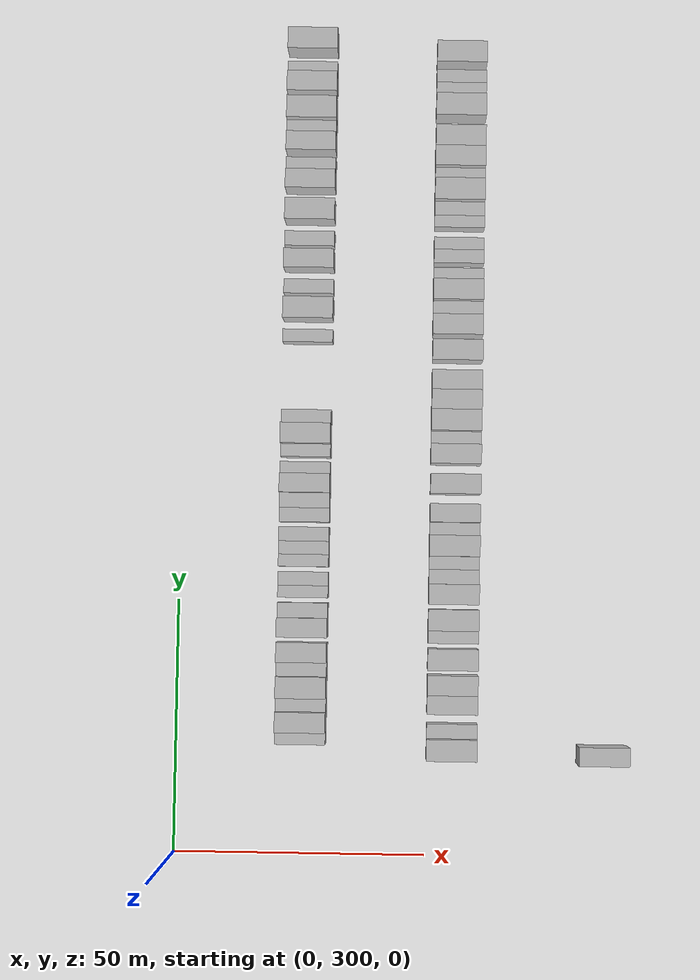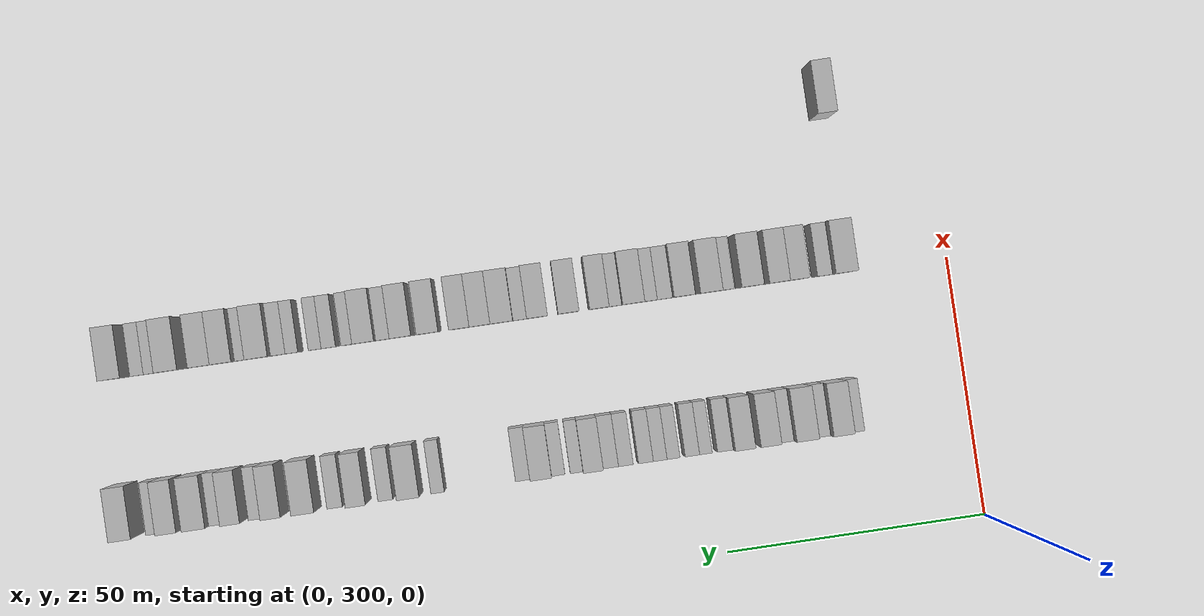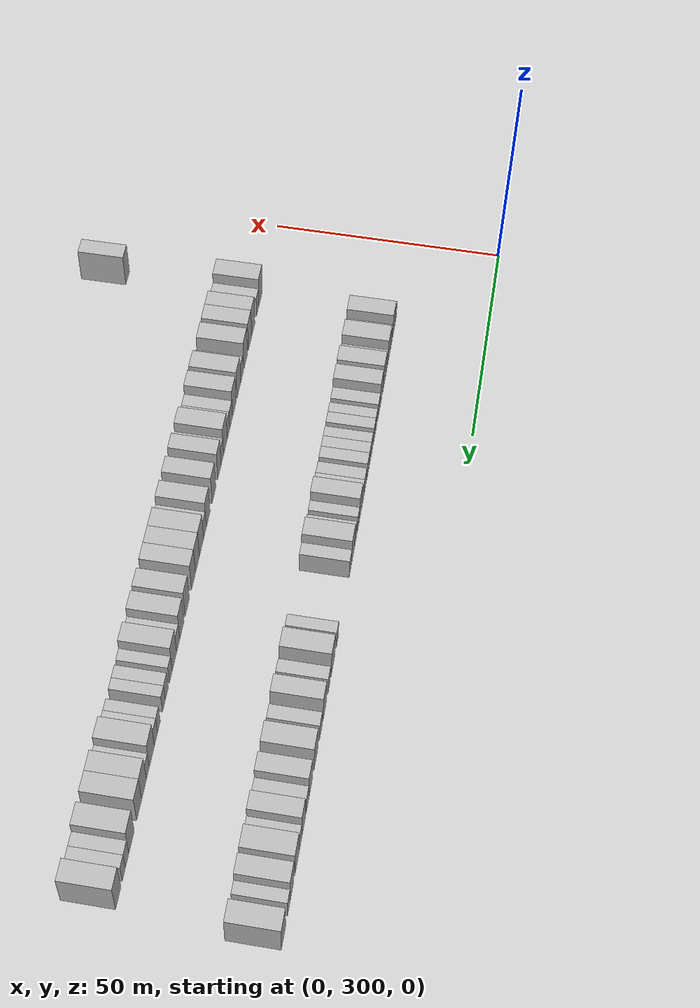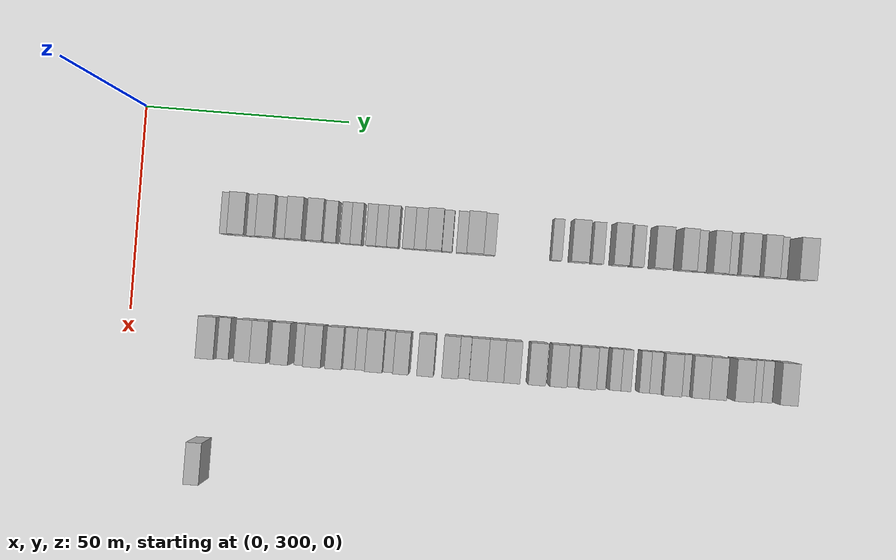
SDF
<sdf version="1.6">
 <world name="default">
  <model name="building_197">
   <static>1</static>
   <pose>25.0000 323.0839 0 0.000000 0.000000 0.000000</pose>
   <link name="link">
    <pose>0 0 3.00 0 0 0</pose>
    <collision name="collision"><geometry><box><size>10.0000 2.4819 6.0000</size></box></geometry></collision>
    <visual name="visual">
     <cast_shadows>0</cast_shadows>
     <geometry><box><size>10.0000 2.4819 6.0000</size></box></geometry>
     <material>
      <script>
       <uri>model://HANNAS_wall/materials/scripts</uri>
       <uri>model://HANNAS_wall/materials/textures</uri>
       <name>vrc/HANNAS_wall</name>
      </script>
     </material>
    </visual>
   </link>
  </model>
  <model name="building_198">
   <static>1</static>
   <pose>25.0000 326.3277 0 0.000000 0.000000 0.000000</pose>
   <link name="link">
    <pose>0 0 4.50 0 0 0</pose>
    <collision name="collision"><geometry><box><size>10.0000 4.0057 9.0000</size></box></geometry></collision>
    <visual name="visual">
     <cast_shadows>0</cast_shadows>
     <geometry><box><size>10.0000 4.0057 9.0000</size></box></geometry>
     <material>
      <script>
       <uri>model://HANNAS_wall/materials/scripts</uri>
       <uri>model://HANNAS_wall/materials/textures</uri>
       <name>vrc/HANNAS_wall</name>
      </script>
     </material>
    </visual>
   </link>
  </model>
  <model name="building_199">
   <static>1</static>
   <pose>25.0000 329.6715 0 0.000000 0.000000 0.000000</pose>
   <link name="link">
    <pose>0 0 3.00 0 0 0</pose>
    <collision name="collision"><geometry><box><size>10.0000 2.6817 6.0000</size></box></geometry></collision>
    <visual name="visual">
     <cast_shadows>0</cast_shadows>
     <geometry><box><size>10.0000 2.6817 6.0000</size></box></geometry>
     <material>
      <script>
       <uri>model://HANNAS_wall/materials/scripts</uri>
       <uri>model://HANNAS_wall/materials/textures</uri>
       <name>vrc/HANNAS_wall</name>
      </script>
     </material>
    </visual>
   </link>
  </model>
  <model name="building_200">
   <static>1</static>
   <pose>25.0000 333.1458 0 0.000000 0.000000 0.000000</pose>
   <link name="link">
    <pose>0 0 4.50 0 0 0</pose>
    <collision name="collision"><geometry><box><size>10.0000 4.2670 9.0000</size></box></geometry></collision>
    <visual name="visual">
     <cast_shadows>0</cast_shadows>
     <geometry><box><size>10.0000 4.2670 9.0000</size></box></geometry>
     <material>
      <script>
       <uri>model://HANNAS_wall/materials/scripts</uri>
       <uri>model://HANNAS_wall/materials/textures</uri>
       <name>vrc/HANNAS_wall</name>
      </script>
     </material>
    </visual>
   </link>
  </model>
  <model name="building_201">
   <static>1</static>
   <pose>25.0000 336.6871 0 0.000000 0.000000 0.000000</pose>
   <link name="link">
    <pose>0 0 3.00 0 0 0</pose>
    <collision name="collision"><geometry><box><size>10.0000 2.8156 6.0000</size></box></geometry></collision>
    <visual name="visual">
     <cast_shadows>0</cast_shadows>
     <geometry><box><size>10.0000 2.8156 6.0000</size></box></geometry>
     <material>
      <script>
       <uri>model://HANNAS_wall/materials/scripts</uri>
       <uri>model://HANNAS_wall/materials/textures</uri>
       <name>vrc/HANNAS_wall</name>
      </script>
     </material>
    </visual>
   </link>
  </model>
  <model name="building_202">
   <static>1</static>
   <pose>25.0000 340.0478 0 0.000000 0.000000 0.000000</pose>
   <link name="link">
    <pose>0 0 4.50 0 0 0</pose>
    <collision name="collision"><geometry><box><size>10.0000 3.9058 9.0000</size></box></geometry></collision>
    <visual name="visual">
     <cast_shadows>0</cast_shadows>
     <geometry><box><size>10.0000 3.9058 9.0000</size></box></geometry>
     <material>
      <script>
       <uri>model://HANNAS_wall/materials/scripts</uri>
       <uri>model://HANNAS_wall/materials/textures</uri>
       <name>vrc/HANNAS_wall</name>
      </script>
     </material>
    </visual>
   </link>
  </model>
  <model name="building_203">
   <static>1</static>
   <pose>25.0000 344.9200 0 0.000000 0.000000 0.000000</pose>
   <link name="link">
    <pose>0 0 4.50 0 0 0</pose>
    <collision name="collision"><geometry><box><size>10.0000 3.8385 9.0000</size></box></geometry></collision>
    <visual name="visual">
     <cast_shadows>0</cast_shadows>
     <geometry><box><size>10.0000 3.8385 9.0000</size></box></geometry>
     <material>
      <script>
       <uri>model://HANNAS_wall/materials/scripts</uri>
       <uri>model://HANNAS_wall/materials/textures</uri>
       <name>vrc/HANNAS_wall</name>
      </script>
     </material>
    </visual>
   </link>
  </model>
  <model name="building_204">
   <static>1</static>
   <pose>25.0000 348.3381 0 0.000000 0.000000 0.000000</pose>
   <link name="link">
    <pose>0 0 3.00 0 0 0</pose>
    <collision name="collision"><geometry><box><size>10.0000 2.9975 6.0000</size></box></geometry></collision>
    <visual name="visual">
     <cast_shadows>0</cast_shadows>
     <geometry><box><size>10.0000 2.9975 6.0000</size></box></geometry>
     <material>
      <script>
       <uri>model://HANNAS_wall/materials/scripts</uri>
       <uri>model://HANNAS_wall/materials/textures</uri>
       <name>vrc/HANNAS_wall</name>
      </script>
     </material>
    </visual>
   </link>
  </model>
  <model name="building_205">
   <static>1</static>
   <pose>25.0000 352.0427 0 0.000000 0.000000 0.000000</pose>
   <link name="link">
    <pose>0 0 3.00 0 0 0</pose>
    <collision name="collision"><geometry><box><size>10.0000 2.4117 6.0000</size></box></geometry></collision>
    <visual name="visual">
     <cast_shadows>0</cast_shadows>
     <geometry><box><size>10.0000 2.4117 6.0000</size></box></geometry>
     <material>
      <script>
       <uri>model://HANNAS_wall/materials/scripts</uri>
       <uri>model://HANNAS_wall/materials/textures</uri>
       <name>vrc/HANNAS_wall</name>
      </script>
     </material>
    </visual>
   </link>
  </model>
  <model name="building_206">
   <static>1</static>
   <pose>25.0000 354.6160 0 0.000000 0.000000 0.000000</pose>
   <link name="link">
    <pose>0 0 3.00 0 0 0</pose>
    <collision name="collision"><geometry><box><size>10.0000 2.7350 6.0000</size></box></geometry></collision>
    <visual name="visual">
     <cast_shadows>0</cast_shadows>
     <geometry><box><size>10.0000 2.7350 6.0000</size></box></geometry>
     <material>
      <script>
       <uri>model://HANNAS_wall/materials/scripts</uri>
       <uri>model://HANNAS_wall/materials/textures</uri>
       <name>vrc/HANNAS_wall</name>
      </script>
     </material>
    </visual>
   </link>
  </model>
  <model name="building_207">
   <static>1</static>
   <pose>25.0000 358.2082 0 0.000000 0.000000 0.000000</pose>
   <link name="link">
    <pose>0 0 3.00 0 0 0</pose>
    <collision name="collision"><geometry><box><size>10.0000 2.4495 6.0000</size></box></geometry></collision>
    <visual name="visual">
     <cast_shadows>0</cast_shadows>
     <geometry><box><size>10.0000 2.4495 6.0000</size></box></geometry>
     <material>
      <script>
       <uri>model://HANNAS_wall/materials/scripts</uri>
       <uri>model://HANNAS_wall/materials/textures</uri>
       <name>vrc/HANNAS_wall</name>
      </script>
     </material>
    </visual>
   </link>
  </model>
  <model name="building_208">
   <static>1</static>
   <pose>25.0000 360.7401 0 0.000000 0.000000 0.000000</pose>
   <link name="link">
    <pose>0 0 3.00 0 0 0</pose>
    <collision name="collision"><geometry><box><size>10.0000 2.6143 6.0000</size></box></geometry></collision>
    <visual name="visual">
     <cast_shadows>0</cast_shadows>
     <geometry><box><size>10.0000 2.6143 6.0000</size></box></geometry>
     <material>
      <script>
       <uri>model://HANNAS_wall/materials/scripts</uri>
       <uri>model://HANNAS_wall/materials/textures</uri>
       <name>vrc/HANNAS_wall</name>
      </script>
     </material>
    </visual>
   </link>
  </model>
  <model name="building_209">
   <static>1</static>
   <pose>25.0000 363.4550 0 0.000000 0.000000 0.000000</pose>
   <link name="link">
    <pose>0 0 3.00 0 0 0</pose>
    <collision name="collision"><geometry><box><size>10.0000 2.8155 6.0000</size></box></geometry></collision>
    <visual name="visual">
     <cast_shadows>0</cast_shadows>
     <geometry><box><size>10.0000 2.8155 6.0000</size></box></geometry>
     <material>
      <script>
       <uri>model://HANNAS_wall/materials/scripts</uri>
       <uri>model://HANNAS_wall/materials/textures</uri>
       <name>vrc/HANNAS_wall</name>
      </script>
     </material>
    </visual>
   </link>
  </model>
  <model name="building_210">
   <static>1</static>
   <pose>25.0000 367.2683 0 0.000000 0.000000 0.000000</pose>
   <link name="link">
    <pose>0 0 3.00 0 0 0</pose>
    <collision name="collision"><geometry><box><size>10.0000 2.8111 6.0000</size></box></geometry></collision>
    <visual name="visual">
     <cast_shadows>0</cast_shadows>
     <geometry><box><size>10.0000 2.8111 6.0000</size></box></geometry>
     <material>
      <script>
       <uri>model://HANNAS_wall/materials/scripts</uri>
       <uri>model://HANNAS_wall/materials/textures</uri>
       <name>vrc/HANNAS_wall</name>
      </script>
     </material>
    </visual>
   </link>
  </model>
  <model name="building_211">
   <static>1</static>
   <pose>25.0000 370.1663 0 0.000000 0.000000 0.000000</pose>
   <link name="link">
    <pose>0 0 3.00 0 0 0</pose>
    <collision name="collision"><geometry><box><size>10.0000 2.9849 6.0000</size></box></geometry></collision>
    <visual name="visual">
     <cast_shadows>0</cast_shadows>
     <geometry><box><size>10.0000 2.9849 6.0000</size></box></geometry>
     <material>
      <script>
       <uri>model://HANNAS_wall/materials/scripts</uri>
       <uri>model://HANNAS_wall/materials/textures</uri>
       <name>vrc/HANNAS_wall</name>
      </script>
     </material>
    </visual>
   </link>
  </model>
  <model name="building_212">
   <static>1</static>
   <pose>25.0000 373.5412 0 0.000000 0.000000 0.000000</pose>
   <link name="link">
    <pose>0 0 4.50 0 0 0</pose>
    <collision name="collision"><geometry><box><size>10.0000 3.7650 9.0000</size></box></geometry></collision>
    <visual name="visual">
     <cast_shadows>0</cast_shadows>
     <geometry><box><size>10.0000 3.7650 9.0000</size></box></geometry>
     <material>
      <script>
       <uri>model://HANNAS_wall/materials/scripts</uri>
       <uri>model://HANNAS_wall/materials/textures</uri>
       <name>vrc/HANNAS_wall</name>
      </script>
     </material>
    </visual>
   </link>
  </model>
  <model name="building_213">
   <static>1</static>
   <pose>25.0000 376.6318 0 0.000000 0.000000 0.000000</pose>
   <link name="link">
    <pose>0 0 3.00 0 0 0</pose>
    <collision name="collision"><geometry><box><size>10.0000 2.4162 6.0000</size></box></geometry></collision>
    <visual name="visual">
     <cast_shadows>0</cast_shadows>
     <geometry><box><size>10.0000 2.4162 6.0000</size></box></geometry>
     <material>
      <script>
       <uri>model://HANNAS_wall/materials/scripts</uri>
       <uri>model://HANNAS_wall/materials/textures</uri>
       <name>vrc/HANNAS_wall</name>
      </script>
     </material>
    </visual>
   </link>
  </model>
  <model name="building_214">
   <static>1</static>
   <pose>25.0000 380.1181 0 0.000000 0.000000 0.000000</pose>
   <link name="link">
    <pose>0 0 3.00 0 0 0</pose>
    <collision name="collision"><geometry><box><size>10.0000 2.5563 6.0000</size></box></geometry></collision>
    <visual name="visual">
     <cast_shadows>0</cast_shadows>
     <geometry><box><size>10.0000 2.5563 6.0000</size></box></geometry>
     <material>
      <script>
       <uri>model://HANNAS_wall/materials/scripts</uri>
       <uri>model://HANNAS_wall/materials/textures</uri>
       <name>vrc/HANNAS_wall</name>
      </script>
     </material>
    </visual>
   </link>
  </model>
  <model name="building_215">
   <static>1</static>
   <pose>25.0000 383.4278 0 0.000000 0.000000 0.000000</pose>
   <link name="link">
    <pose>0 0 4.50 0 0 0</pose>
    <collision name="collision"><geometry><box><size>10.0000 4.0631 9.0000</size></box></geometry></collision>
    <visual name="visual">
     <cast_shadows>0</cast_shadows>
     <geometry><box><size>10.0000 4.0631 9.0000</size></box></geometry>
     <material>
      <script>
       <uri>model://HANNAS_wall/materials/scripts</uri>
       <uri>model://HANNAS_wall/materials/textures</uri>
       <name>vrc/HANNAS_wall</name>
      </script>
     </material>
    </visual>
   </link>
  </model>
  <model name="building_216">
   <static>1</static>
   <pose>25.0000 386.8630 0 0.000000 0.000000 0.000000</pose>
   <link name="link">
    <pose>0 0 3.00 0 0 0</pose>
    <collision name="collision"><geometry><box><size>10.0000 2.8074 6.0000</size></box></geometry></collision>
    <visual name="visual">
     <cast_shadows>0</cast_shadows>
     <geometry><box><size>10.0000 2.8074 6.0000</size></box></geometry>
     <material>
      <script>
       <uri>model://HANNAS_wall/materials/scripts</uri>
       <uri>model://HANNAS_wall/materials/textures</uri>
       <name>vrc/HANNAS_wall</name>
      </script>
     </material>
    </visual>
   </link>
  </model>
  <model name="building_217">
   <static>1</static>
   <pose>25.0000 403.0632 0 0.000000 0.000000 0.000000</pose>
   <link name="link">
    <pose>0 0 3.00 0 0 0</pose>
    <collision name="collision"><geometry><box><size>10.0000 2.5310 6.0000</size></box></geometry></collision>
    <visual name="visual">
     <cast_shadows>0</cast_shadows>
     <geometry><box><size>10.0000 2.5310 6.0000</size></box></geometry>
     <material>
      <script>
       <uri>model://HANNAS_wall/materials/scripts</uri>
       <uri>model://HANNAS_wall/materials/textures</uri>
       <name>vrc/HANNAS_wall</name>
      </script>
     </material>
    </visual>
   </link>
  </model>
  <model name="building_218">
   <static>1</static>
   <pose>25.0000 408.4440 0 0.000000 0.000000 0.000000</pose>
   <link name="link">
    <pose>0 0 4.50 0 0 0</pose>
    <collision name="collision"><geometry><box><size>10.0000 4.2307 9.0000</size></box></geometry></collision>
    <visual name="visual">
     <cast_shadows>0</cast_shadows>
     <geometry><box><size>10.0000 4.2307 9.0000</size></box></geometry>
     <material>
      <script>
       <uri>model://HANNAS_wall/materials/scripts</uri>
       <uri>model://HANNAS_wall/materials/textures</uri>
       <name>vrc/HANNAS_wall</name>
      </script>
     </material>
    </visual>
   </link>
  </model>
  <model name="building_219">
   <static>1</static>
   <pose>25.0000 412.9791 0 0.000000 0.000000 0.000000</pose>
   <link name="link">
    <pose>0 0 3.00 0 0 0</pose>
    <collision name="collision"><geometry><box><size>10.0000 2.8394 6.0000</size></box></geometry></collision>
    <visual name="visual">
     <cast_shadows>0</cast_shadows>
     <geometry><box><size>10.0000 2.8394 6.0000</size></box></geometry>
     <material>
      <script>
       <uri>model://HANNAS_wall/materials/scripts</uri>
       <uri>model://HANNAS_wall/materials/textures</uri>
       <name>vrc/HANNAS_wall</name>
      </script>
     </material>
    </visual>
   </link>
  </model>
  <model name="building_220">
   <static>1</static>
   <pose>25.0000 418.2766 0 0.000000 0.000000 0.000000</pose>
   <link name="link">
    <pose>0 0 4.50 0 0 0</pose>
    <collision name="collision"><geometry><box><size>10.0000 3.7556 9.0000</size></box></geometry></collision>
    <visual name="visual">
     <cast_shadows>0</cast_shadows>
     <geometry><box><size>10.0000 3.7556 9.0000</size></box></geometry>
     <material>
      <script>
       <uri>model://HANNAS_wall/materials/scripts</uri>
       <uri>model://HANNAS_wall/materials/textures</uri>
       <name>vrc/HANNAS_wall</name>
      </script>
     </material>
    </visual>
   </link>
  </model>
  <model name="building_221">
   <static>1</static>
   <pose>25.0000 422.6198 0 0.000000 0.000000 0.000000</pose>
   <link name="link">
    <pose>0 0 3.00 0 0 0</pose>
    <collision name="collision"><geometry><box><size>10.0000 2.9308 6.0000</size></box></geometry></collision>
    <visual name="visual">
     <cast_shadows>0</cast_shadows>
     <geometry><box><size>10.0000 2.9308 6.0000</size></box></geometry>
     <material>
      <script>
       <uri>model://HANNAS_wall/materials/scripts</uri>
       <uri>model://HANNAS_wall/materials/textures</uri>
       <name>vrc/HANNAS_wall</name>
      </script>
     </material>
    </visual>
   </link>
  </model>
  <model name="building_222">
   <static>1</static>
   <pose>25.0000 428.2286 0 0.000000 0.000000 0.000000</pose>
   <link name="link">
    <pose>0 0 4.50 0 0 0</pose>
    <collision name="collision"><geometry><box><size>10.0000 4.2868 9.0000</size></box></geometry></collision>
    <visual name="visual">
     <cast_shadows>0</cast_shadows>
     <geometry><box><size>10.0000 4.2868 9.0000</size></box></geometry>
     <material>
      <script>
       <uri>model://HANNAS_wall/materials/scripts</uri>
       <uri>model://HANNAS_wall/materials/textures</uri>
       <name>vrc/HANNAS_wall</name>
      </script>
     </material>
    </visual>
   </link>
  </model>
  <model name="building_223">
   <static>1</static>
   <pose>25.0000 434.2690 0 0.000000 0.000000 0.000000</pose>
   <link name="link">
    <pose>0 0 4.50 0 0 0</pose>
    <collision name="collision"><geometry><box><size>10.0000 3.7939 9.0000</size></box></geometry></collision>
    <visual name="visual">
     <cast_shadows>0</cast_shadows>
     <geometry><box><size>10.0000 3.7939 9.0000</size></box></geometry>
     <material>
      <script>
       <uri>model://HANNAS_wall/materials/scripts</uri>
       <uri>model://HANNAS_wall/materials/textures</uri>
       <name>vrc/HANNAS_wall</name>
      </script>
     </material>
    </visual>
   </link>
  </model>
  <model name="building_224">
   <static>1</static>
   <pose>25.0000 437.5883 0 0.000000 0.000000 0.000000</pose>
   <link name="link">
    <pose>0 0 3.00 0 0 0</pose>
    <collision name="collision"><geometry><box><size>10.0000 2.8447 6.0000</size></box></geometry></collision>
    <visual name="visual">
     <cast_shadows>0</cast_shadows>
     <geometry><box><size>10.0000 2.8447 6.0000</size></box></geometry>
     <material>
      <script>
       <uri>model://HANNAS_wall/materials/scripts</uri>
       <uri>model://HANNAS_wall/materials/textures</uri>
       <name>vrc/HANNAS_wall</name>
      </script>
     </material>
    </visual>
   </link>
  </model>
  <model name="building_225">
   <static>1</static>
   <pose>25.0000 441.8723 0 0.000000 0.000000 0.000000</pose>
   <link name="link">
    <pose>0 0 4.50 0 0 0</pose>
    <collision name="collision"><geometry><box><size>10.0000 3.7235 9.0000</size></box></geometry></collision>
    <visual name="visual">
     <cast_shadows>0</cast_shadows>
     <geometry><box><size>10.0000 3.7235 9.0000</size></box></geometry>
     <material>
      <script>
       <uri>model://HANNAS_wall/materials/scripts</uri>
       <uri>model://HANNAS_wall/materials/textures</uri>
       <name>vrc/HANNAS_wall</name>
      </script>
     </material>
    </visual>
   </link>
  </model>
  <model name="building_226">
   <static>1</static>
   <pose>25.0000 445.1358 0 0.000000 0.000000 0.000000</pose>
   <link name="link">
    <pose>0 0 3.00 0 0 0</pose>
    <collision name="collision"><geometry><box><size>10.0000 2.8035 6.0000</size></box></geometry></collision>
    <visual name="visual">
     <cast_shadows>0</cast_shadows>
     <geometry><box><size>10.0000 2.8035 6.0000</size></box></geometry>
     <material>
      <script>
       <uri>model://HANNAS_wall/materials/scripts</uri>
       <uri>model://HANNAS_wall/materials/textures</uri>
       <name>vrc/HANNAS_wall</name>
      </script>
     </material>
    </visual>
   </link>
  </model>
  <model name="building_227">
   <static>1</static>
   <pose>25.0000 448.7479 0 0.000000 0.000000 0.000000</pose>
   <link name="link">
    <pose>0 0 4.50 0 0 0</pose>
    <collision name="collision"><geometry><box><size>10.0000 4.4206 9.0000</size></box></geometry></collision>
    <visual name="visual">
     <cast_shadows>0</cast_shadows>
     <geometry><box><size>10.0000 4.4206 9.0000</size></box></geometry>
     <material>
      <script>
       <uri>model://HANNAS_wall/materials/scripts</uri>
       <uri>model://HANNAS_wall/materials/textures</uri>
       <name>vrc/HANNAS_wall</name>
      </script>
     </material>
    </visual>
   </link>
  </model>
  <model name="building_228">
   <static>1</static>
   <pose>25.0000 453.9394 0 0.000000 0.000000 0.000000</pose>
   <link name="link">
    <pose>0 0 4.50 0 0 0</pose>
    <collision name="collision"><geometry><box><size>10.0000 3.9623 9.0000</size></box></geometry></collision>
    <visual name="visual">
     <cast_shadows>0</cast_shadows>
     <geometry><box><size>10.0000 3.9623 9.0000</size></box></geometry>
     <material>
      <script>
       <uri>model://HANNAS_wall/materials/scripts</uri>
       <uri>model://HANNAS_wall/materials/textures</uri>
       <name>vrc/HANNAS_wall</name>
      </script>
     </material>
    </visual>
   </link>
  </model>
  <model name="building_229">
   <static>1</static>
   <pose>25.0000 457.2005 0 0.000000 0.000000 0.000000</pose>
   <link name="link">
    <pose>0 0 3.00 0 0 0</pose>
    <collision name="collision"><geometry><box><size>10.0000 2.5598 6.0000</size></box></geometry></collision>
    <visual name="visual">
     <cast_shadows>0</cast_shadows>
     <geometry><box><size>10.0000 2.5598 6.0000</size></box></geometry>
     <material>
      <script>
       <uri>model://HANNAS_wall/materials/scripts</uri>
       <uri>model://HANNAS_wall/materials/textures</uri>
       <name>vrc/HANNAS_wall</name>
      </script>
     </material>
    </visual>
   </link>
  </model>
  <model name="building_230">
   <static>1</static>
   <pose>25.0000 462.6021 0 0.000000 0.000000 0.000000</pose>
   <link name="link">
    <pose>0 0 4.50 0 0 0</pose>
    <collision name="collision"><geometry><box><size>10.0000 4.2435 9.0000</size></box></geometry></collision>
    <visual name="visual">
     <cast_shadows>0</cast_shadows>
     <geometry><box><size>10.0000 4.2435 9.0000</size></box></geometry>
     <material>
      <script>
       <uri>model://HANNAS_wall/materials/scripts</uri>
       <uri>model://HANNAS_wall/materials/textures</uri>
       <name>vrc/HANNAS_wall</name>
      </script>
     </material>
    </visual>
   </link>
  </model>
  <model name="building_423">
   <static>1</static>
   <pose>55.0000 321.3728 0 0.000000 0.000000 0.000000</pose>
   <link name="link">
    <pose>0 0 4.50 0 0 0</pose>
    <collision name="collision"><geometry><box><size>10.0000 4.2852 9.0000</size></box></geometry></collision>
    <visual name="visual">
     <cast_shadows>0</cast_shadows>
     <geometry><box><size>10.0000 4.2852 9.0000</size></box></geometry>
     <material>
      <script>
       <uri>model://HANNAS_wall/materials/scripts</uri>
       <uri>model://HANNAS_wall/materials/textures</uri>
       <name>vrc/HANNAS_wall</name>
      </script>
     </material>
    </visual>
   </link>
  </model>
  <model name="building_424">
   <static>1</static>
   <pose>55.0000 324.9489 0 0.000000 0.000000 0.000000</pose>
   <link name="link">
    <pose>0 0 3.00 0 0 0</pose>
    <collision name="collision"><geometry><box><size>10.0000 2.8668 6.0000</size></box></geometry></collision>
    <visual name="visual">
     <cast_shadows>0</cast_shadows>
     <geometry><box><size>10.0000 2.8668 6.0000</size></box></geometry>
     <material>
      <script>
       <uri>model://HANNAS_wall/materials/scripts</uri>
       <uri>model://HANNAS_wall/materials/textures</uri>
       <name>vrc/HANNAS_wall</name>
      </script>
     </material>
    </visual>
   </link>
  </model>
  <model name="building_425">
   <static>1</static>
   <pose>55.0000 330.2243 0 0.000000 0.000000 0.000000</pose>
   <link name="link">
    <pose>0 0 4.50 0 0 0</pose>
    <collision name="collision"><geometry><box><size>10.0000 3.6841 9.0000</size></box></geometry></collision>
    <visual name="visual">
     <cast_shadows>0</cast_shadows>
     <geometry><box><size>10.0000 3.6841 9.0000</size></box></geometry>
     <material>
      <script>
       <uri>model://HANNAS_wall/materials/scripts</uri>
       <uri>model://HANNAS_wall/materials/textures</uri>
       <name>vrc/HANNAS_wall</name>
      </script>
     </material>
    </visual>
   </link>
  </model>
  <model name="building_426">
   <static>1</static>
   <pose>55.0000 334.0288 0 0.000000 0.000000 0.000000</pose>
   <link name="link">
    <pose>0 0 4.50 0 0 0</pose>
    <collision name="collision"><geometry><box><size>10.0000 3.9249 9.0000</size></box></geometry></collision>
    <visual name="visual">
     <cast_shadows>0</cast_shadows>
     <geometry><box><size>10.0000 3.9249 9.0000</size></box></geometry>
     <material>
      <script>
       <uri>model://HANNAS_wall/materials/scripts</uri>
       <uri>model://HANNAS_wall/materials/textures</uri>
       <name>vrc/HANNAS_wall</name>
      </script>
     </material>
    </visual>
   </link>
  </model>
  <model name="building_427">
   <static>1</static>
   <pose>55.0000 339.1026 0 0.000000 0.000000 0.000000</pose>
   <link name="link">
    <pose>0 0 4.50 0 0 0</pose>
    <collision name="collision"><geometry><box><size>10.0000 4.2227 9.0000</size></box></geometry></collision>
    <visual name="visual">
     <cast_shadows>0</cast_shadows>
     <geometry><box><size>10.0000 4.2227 9.0000</size></box></geometry>
     <material>
      <script>
       <uri>model://HANNAS_wall/materials/scripts</uri>
       <uri>model://HANNAS_wall/materials/textures</uri>
       <name>vrc/HANNAS_wall</name>
      </script>
     </material>
    </visual>
   </link>
  </model>
  <model name="building_428">
   <static>1</static>
   <pose>55.0000 343.4811 0 0.000000 0.000000 0.000000</pose>
   <link name="link">
    <pose>0 0 3.00 0 0 0</pose>
    <collision name="collision"><geometry><box><size>10.0000 2.5343 6.0000</size></box></geometry></collision>
    <visual name="visual">
     <cast_shadows>0</cast_shadows>
     <geometry><box><size>10.0000 2.5343 6.0000</size></box></geometry>
     <material>
      <script>
       <uri>model://HANNAS_wall/materials/scripts</uri>
       <uri>model://HANNAS_wall/materials/textures</uri>
       <name>vrc/HANNAS_wall</name>
      </script>
     </material>
    </visual>
   </link>
  </model>
  <model name="building_429">
   <static>1</static>
   <pose>55.0000 346.8650 0 0.000000 0.000000 0.000000</pose>
   <link name="link">
    <pose>0 0 4.50 0 0 0</pose>
    <collision name="collision"><geometry><box><size>10.0000 4.2335 9.0000</size></box></geometry></collision>
    <visual name="visual">
     <cast_shadows>0</cast_shadows>
     <geometry><box><size>10.0000 4.2335 9.0000</size></box></geometry>
     <material>
      <script>
       <uri>model://HANNAS_wall/materials/scripts</uri>
       <uri>model://HANNAS_wall/materials/textures</uri>
       <name>vrc/HANNAS_wall</name>
      </script>
     </material>
    </visual>
   </link>
  </model>
  <model name="building_430">
   <static>1</static>
   <pose>55.0000 351.9788 0 0.000000 0.000000 0.000000</pose>
   <link name="link">
    <pose>0 0 4.50 0 0 0</pose>
    <collision name="collision"><geometry><box><size>10.0000 3.9942 9.0000</size></box></geometry></collision>
    <visual name="visual">
     <cast_shadows>0</cast_shadows>
     <geometry><box><size>10.0000 3.9942 9.0000</size></box></geometry>
     <material>
      <script>
       <uri>model://HANNAS_wall/materials/scripts</uri>
       <uri>model://HANNAS_wall/materials/textures</uri>
       <name>vrc/HANNAS_wall</name>
      </script>
     </material>
    </visual>
   </link>
  </model>
  <model name="building_431">
   <static>1</static>
   <pose>55.0000 355.4327 0 0.000000 0.000000 0.000000</pose>
   <link name="link">
    <pose>0 0 3.00 0 0 0</pose>
    <collision name="collision"><geometry><box><size>10.0000 2.9136 6.0000</size></box></geometry></collision>
    <visual name="visual">
     <cast_shadows>0</cast_shadows>
     <geometry><box><size>10.0000 2.9136 6.0000</size></box></geometry>
     <material>
      <script>
       <uri>model://HANNAS_wall/materials/scripts</uri>
       <uri>model://HANNAS_wall/materials/textures</uri>
       <name>vrc/HANNAS_wall</name>
      </script>
     </material>
    </visual>
   </link>
  </model>
  <model name="building_432">
   <static>1</static>
   <pose>55.0000 358.1900 0 0.000000 0.000000 0.000000</pose>
   <link name="link">
    <pose>0 0 3.00 0 0 0</pose>
    <collision name="collision"><geometry><box><size>10.0000 2.6009 6.0000</size></box></geometry></collision>
    <visual name="visual">
     <cast_shadows>0</cast_shadows>
     <geometry><box><size>10.0000 2.6009 6.0000</size></box></geometry>
     <material>
      <script>
       <uri>model://HANNAS_wall/materials/scripts</uri>
       <uri>model://HANNAS_wall/materials/textures</uri>
       <name>vrc/HANNAS_wall</name>
      </script>
     </material>
    </visual>
   </link>
  </model>
  <model name="building_433">
   <static>1</static>
   <pose>55.0000 361.5749 0 0.000000 0.000000 0.000000</pose>
   <link name="link">
    <pose>0 0 4.50 0 0 0</pose>
    <collision name="collision"><geometry><box><size>10.0000 4.1689 9.0000</size></box></geometry></collision>
    <visual name="visual">
     <cast_shadows>0</cast_shadows>
     <geometry><box><size>10.0000 4.1689 9.0000</size></box></geometry>
     <material>
      <script>
       <uri>model://HANNAS_wall/materials/scripts</uri>
       <uri>model://HANNAS_wall/materials/textures</uri>
       <name>vrc/HANNAS_wall</name>
      </script>
     </material>
    </visual>
   </link>
  </model>
  <model name="building_434">
   <static>1</static>
   <pose>55.0000 364.9301 0 0.000000 0.000000 0.000000</pose>
   <link name="link">
    <pose>0 0 3.00 0 0 0</pose>
    <collision name="collision"><geometry><box><size>10.0000 2.5415 6.0000</size></box></geometry></collision>
    <visual name="visual">
     <cast_shadows>0</cast_shadows>
     <geometry><box><size>10.0000 2.5415 6.0000</size></box></geometry>
     <material>
      <script>
       <uri>model://HANNAS_wall/materials/scripts</uri>
       <uri>model://HANNAS_wall/materials/textures</uri>
       <name>vrc/HANNAS_wall</name>
      </script>
     </material>
    </visual>
   </link>
  </model>
  <model name="building_435">
   <static>1</static>
   <pose>55.0000 368.0329 0 0.000000 0.000000 0.000000</pose>
   <link name="link">
    <pose>0 0 4.50 0 0 0</pose>
    <collision name="collision"><geometry><box><size>10.0000 3.6640 9.0000</size></box></geometry></collision>
    <visual name="visual">
     <cast_shadows>0</cast_shadows>
     <geometry><box><size>10.0000 3.6640 9.0000</size></box></geometry>
     <material>
      <script>
       <uri>model://HANNAS_wall/materials/scripts</uri>
       <uri>model://HANNAS_wall/materials/textures</uri>
       <name>vrc/HANNAS_wall</name>
      </script>
     </material>
    </visual>
   </link>
  </model>
  <model name="building_436">
   <static>1</static>
   <pose>55.0000 373.8420 0 0.000000 0.000000 0.000000</pose>
   <link name="link">
    <pose>0 0 4.50 0 0 0</pose>
    <collision name="collision"><geometry><box><size>10.0000 3.9543 9.0000</size></box></geometry></collision>
    <visual name="visual">
     <cast_shadows>0</cast_shadows>
     <geometry><box><size>10.0000 3.9543 9.0000</size></box></geometry>
     <material>
      <script>
       <uri>model://HANNAS_wall/materials/scripts</uri>
       <uri>model://HANNAS_wall/materials/textures</uri>
       <name>vrc/HANNAS_wall</name>
      </script>
     </material>
    </visual>
   </link>
  </model>
  <model name="building_437">
   <static>1</static>
   <pose>55.0000 379.7818 0 0.000000 0.000000 0.000000</pose>
   <link name="link">
    <pose>0 0 4.50 0 0 0</pose>
    <collision name="collision"><geometry><box><size>10.0000 3.9253 9.0000</size></box></geometry></collision>
    <visual name="visual">
     <cast_shadows>0</cast_shadows>
     <geometry><box><size>10.0000 3.9253 9.0000</size></box></geometry>
     <material>
      <script>
       <uri>model://HANNAS_wall/materials/scripts</uri>
       <uri>model://HANNAS_wall/materials/textures</uri>
       <name>vrc/HANNAS_wall</name>
      </script>
     </material>
    </visual>
   </link>
  </model>
  <model name="building_438">
   <static>1</static>
   <pose>55.0000 383.0618 0 0.000000 0.000000 0.000000</pose>
   <link name="link">
    <pose>0 0 3.00 0 0 0</pose>
    <collision name="collision"><geometry><box><size>10.0000 2.6346 6.0000</size></box></geometry></collision>
    <visual name="visual">
     <cast_shadows>0</cast_shadows>
     <geometry><box><size>10.0000 2.6346 6.0000</size></box></geometry>
     <material>
      <script>
       <uri>model://HANNAS_wall/materials/scripts</uri>
       <uri>model://HANNAS_wall/materials/textures</uri>
       <name>vrc/HANNAS_wall</name>
      </script>
     </material>
    </visual>
   </link>
  </model>
  <model name="building_439">
   <static>1</static>
   <pose>55.0000 386.5074 0 0.000000 0.000000 0.000000</pose>
   <link name="link">
    <pose>0 0 4.50 0 0 0</pose>
    <collision name="collision"><geometry><box><size>10.0000 4.2566 9.0000</size></box></geometry></collision>
    <visual name="visual">
     <cast_shadows>0</cast_shadows>
     <geometry><box><size>10.0000 4.2566 9.0000</size></box></geometry>
     <material>
      <script>
       <uri>model://HANNAS_wall/materials/scripts</uri>
       <uri>model://HANNAS_wall/materials/textures</uri>
       <name>vrc/HANNAS_wall</name>
      </script>
     </material>
    </visual>
   </link>
  </model>
  <model name="building_440">
   <static>1</static>
   <pose>55.0000 390.6031 0 0.000000 0.000000 0.000000</pose>
   <link name="link">
    <pose>0 0 4.50 0 0 0</pose>
    <collision name="collision"><geometry><box><size>10.0000 3.9349 9.0000</size></box></geometry></collision>
    <visual name="visual">
     <cast_shadows>0</cast_shadows>
     <geometry><box><size>10.0000 3.9349 9.0000</size></box></geometry>
     <material>
      <script>
       <uri>model://HANNAS_wall/materials/scripts</uri>
       <uri>model://HANNAS_wall/materials/textures</uri>
       <name>vrc/HANNAS_wall</name>
      </script>
     </material>
    </visual>
   </link>
  </model>
  <model name="building_441">
   <static>1</static>
   <pose>55.0000 394.5012 0 0.000000 0.000000 0.000000</pose>
   <link name="link">
    <pose>0 0 4.50 0 0 0</pose>
    <collision name="collision"><geometry><box><size>10.0000 3.8612 9.0000</size></box></geometry></collision>
    <visual name="visual">
     <cast_shadows>0</cast_shadows>
     <geometry><box><size>10.0000 3.8612 9.0000</size></box></geometry>
     <material>
      <script>
       <uri>model://HANNAS_wall/materials/scripts</uri>
       <uri>model://HANNAS_wall/materials/textures</uri>
       <name>vrc/HANNAS_wall</name>
      </script>
     </material>
    </visual>
   </link>
  </model>
  <model name="building_442">
   <static>1</static>
   <pose>55.0000 400.4855 0 0.000000 0.000000 0.000000</pose>
   <link name="link">
    <pose>0 0 4.50 0 0 0</pose>
    <collision name="collision"><geometry><box><size>10.0000 4.1075 9.0000</size></box></geometry></collision>
    <visual name="visual">
     <cast_shadows>0</cast_shadows>
     <geometry><box><size>10.0000 4.1075 9.0000</size></box></geometry>
     <material>
      <script>
       <uri>model://HANNAS_wall/materials/scripts</uri>
       <uri>model://HANNAS_wall/materials/textures</uri>
       <name>vrc/HANNAS_wall</name>
      </script>
     </material>
    </visual>
   </link>
  </model>
  <model name="building_443">
   <static>1</static>
   <pose>55.0000 405.5606 0 0.000000 0.000000 0.000000</pose>
   <link name="link">
    <pose>0 0 4.50 0 0 0</pose>
    <collision name="collision"><geometry><box><size>10.0000 4.0426 9.0000</size></box></geometry></collision>
    <visual name="visual">
     <cast_shadows>0</cast_shadows>
     <geometry><box><size>10.0000 4.0426 9.0000</size></box></geometry>
     <material>
      <script>
       <uri>model://HANNAS_wall/materials/scripts</uri>
       <uri>model://HANNAS_wall/materials/textures</uri>
       <name>vrc/HANNAS_wall</name>
      </script>
     </material>
    </visual>
   </link>
  </model>
  <model name="building_444">
   <static>1</static>
   <pose>55.0000 409.0458 0 0.000000 0.000000 0.000000</pose>
   <link name="link">
    <pose>0 0 3.00 0 0 0</pose>
    <collision name="collision"><geometry><box><size>10.0000 2.9279 6.0000</size></box></geometry></collision>
    <visual name="visual">
     <cast_shadows>0</cast_shadows>
     <geometry><box><size>10.0000 2.9279 6.0000</size></box></geometry>
     <material>
      <script>
       <uri>model://HANNAS_wall/materials/scripts</uri>
       <uri>model://HANNAS_wall/materials/textures</uri>
       <name>vrc/HANNAS_wall</name>
      </script>
     </material>
    </visual>
   </link>
  </model>
  <model name="building_445">
   <static>1</static>
   <pose>55.0000 412.5572 0 0.000000 0.000000 0.000000</pose>
   <link name="link">
    <pose>0 0 4.50 0 0 0</pose>
    <collision name="collision"><geometry><box><size>10.0000 4.0948 9.0000</size></box></geometry></collision>
    <visual name="visual">
     <cast_shadows>0</cast_shadows>
     <geometry><box><size>10.0000 4.0948 9.0000</size></box></geometry>
     <material>
      <script>
       <uri>model://HANNAS_wall/materials/scripts</uri>
       <uri>model://HANNAS_wall/materials/textures</uri>
       <name>vrc/HANNAS_wall</name>
      </script>
     </material>
    </visual>
   </link>
  </model>
  <model name="building_446">
   <static>1</static>
   <pose>55.0000 415.8768 0 0.000000 0.000000 0.000000</pose>
   <link name="link">
    <pose>0 0 3.00 0 0 0</pose>
    <collision name="collision"><geometry><box><size>10.0000 2.5444 6.0000</size></box></geometry></collision>
    <visual name="visual">
     <cast_shadows>0</cast_shadows>
     <geometry><box><size>10.0000 2.5444 6.0000</size></box></geometry>
     <material>
      <script>
       <uri>model://HANNAS_wall/materials/scripts</uri>
       <uri>model://HANNAS_wall/materials/textures</uri>
       <name>vrc/HANNAS_wall</name>
      </script>
     </material>
    </visual>
   </link>
  </model>
  <model name="building_447">
   <static>1</static>
   <pose>55.0000 419.5076 0 0.000000 0.000000 0.000000</pose>
   <link name="link">
    <pose>0 0 3.00 0 0 0</pose>
    <collision name="collision"><geometry><box><size>10.0000 2.7171 6.0000</size></box></geometry></collision>
    <visual name="visual">
     <cast_shadows>0</cast_shadows>
     <geometry><box><size>10.0000 2.7171 6.0000</size></box></geometry>
     <material>
      <script>
       <uri>model://HANNAS_wall/materials/scripts</uri>
       <uri>model://HANNAS_wall/materials/textures</uri>
       <name>vrc/HANNAS_wall</name>
      </script>
     </material>
    </visual>
   </link>
  </model>
  <model name="building_448">
   <static>1</static>
   <pose>55.0000 422.0923 0 0.000000 0.000000 0.000000</pose>
   <link name="link">
    <pose>0 0 3.00 0 0 0</pose>
    <collision name="collision"><geometry><box><size>10.0000 2.4523 6.0000</size></box></geometry></collision>
    <visual name="visual">
     <cast_shadows>0</cast_shadows>
     <geometry><box><size>10.0000 2.4523 6.0000</size></box></geometry>
     <material>
      <script>
       <uri>model://HANNAS_wall/materials/scripts</uri>
       <uri>model://HANNAS_wall/materials/textures</uri>
       <name>vrc/HANNAS_wall</name>
      </script>
     </material>
    </visual>
   </link>
  </model>
  <model name="building_449">
   <static>1</static>
   <pose>55.0000 426.5275 0 0.000000 0.000000 0.000000</pose>
   <link name="link">
    <pose>0 0 3.00 0 0 0</pose>
    <collision name="collision"><geometry><box><size>10.0000 2.4181 6.0000</size></box></geometry></collision>
    <visual name="visual">
     <cast_shadows>0</cast_shadows>
     <geometry><box><size>10.0000 2.4181 6.0000</size></box></geometry>
     <material>
      <script>
       <uri>model://HANNAS_wall/materials/scripts</uri>
       <uri>model://HANNAS_wall/materials/textures</uri>
       <name>vrc/HANNAS_wall</name>
      </script>
     </material>
    </visual>
   </link>
  </model>
  <model name="building_450">
   <static>1</static>
   <pose>55.0000 429.1245 0 0.000000 0.000000 0.000000</pose>
   <link name="link">
    <pose>0 0 3.00 0 0 0</pose>
    <collision name="collision"><geometry><box><size>10.0000 2.7759 6.0000</size></box></geometry></collision>
    <visual name="visual">
     <cast_shadows>0</cast_shadows>
     <geometry><box><size>10.0000 2.7759 6.0000</size></box></geometry>
     <material>
      <script>
       <uri>model://HANNAS_wall/materials/scripts</uri>
       <uri>model://HANNAS_wall/materials/textures</uri>
       <name>vrc/HANNAS_wall</name>
      </script>
     </material>
    </visual>
   </link>
  </model>
  <model name="building_451">
   <static>1</static>
   <pose>55.0000 432.6923 0 0.000000 0.000000 0.000000</pose>
   <link name="link">
    <pose>0 0 4.50 0 0 0</pose>
    <collision name="collision"><geometry><box><size>10.0000 4.3597 9.0000</size></box></geometry></collision>
    <visual name="visual">
     <cast_shadows>0</cast_shadows>
     <geometry><box><size>10.0000 4.3597 9.0000</size></box></geometry>
     <material>
      <script>
       <uri>model://HANNAS_wall/materials/scripts</uri>
       <uri>model://HANNAS_wall/materials/textures</uri>
       <name>vrc/HANNAS_wall</name>
      </script>
     </material>
    </visual>
   </link>
  </model>
  <model name="building_452">
   <static>1</static>
   <pose>55.0000 436.1121 0 0.000000 0.000000 0.000000</pose>
   <link name="link">
    <pose>0 0 3.00 0 0 0</pose>
    <collision name="collision"><geometry><box><size>10.0000 2.4798 6.0000</size></box></geometry></collision>
    <visual name="visual">
     <cast_shadows>0</cast_shadows>
     <geometry><box><size>10.0000 2.4798 6.0000</size></box></geometry>
     <material>
      <script>
       <uri>model://HANNAS_wall/materials/scripts</uri>
       <uri>model://HANNAS_wall/materials/textures</uri>
       <name>vrc/HANNAS_wall</name>
      </script>
     </material>
    </visual>
   </link>
  </model>
  <model name="building_453">
   <static>1</static>
   <pose>55.0000 439.3753 0 0.000000 0.000000 0.000000</pose>
   <link name="link">
    <pose>0 0 4.50 0 0 0</pose>
    <collision name="collision"><geometry><box><size>10.0000 4.0466 9.0000</size></box></geometry></collision>
    <visual name="visual">
     <cast_shadows>0</cast_shadows>
     <geometry><box><size>10.0000 4.0466 9.0000</size></box></geometry>
     <material>
      <script>
       <uri>model://HANNAS_wall/materials/scripts</uri>
       <uri>model://HANNAS_wall/materials/textures</uri>
       <name>vrc/HANNAS_wall</name>
      </script>
     </material>
    </visual>
   </link>
  </model>
  <model name="building_454">
   <static>1</static>
   <pose>55.0000 443.4621 0 0.000000 0.000000 0.000000</pose>
   <link name="link">
    <pose>0 0 4.50 0 0 0</pose>
    <collision name="collision"><geometry><box><size>10.0000 4.1268 9.0000</size></box></geometry></collision>
    <visual name="visual">
     <cast_shadows>0</cast_shadows>
     <geometry><box><size>10.0000 4.1268 9.0000</size></box></geometry>
     <material>
      <script>
       <uri>model://HANNAS_wall/materials/scripts</uri>
       <uri>model://HANNAS_wall/materials/textures</uri>
       <name>vrc/HANNAS_wall</name>
      </script>
     </material>
    </visual>
   </link>
  </model>
  <model name="building_455">
   <static>1</static>
   <pose>55.0000 449.7314 0 0.000000 0.000000 0.000000</pose>
   <link name="link">
    <pose>0 0 4.50 0 0 0</pose>
    <collision name="collision"><geometry><box><size>10.0000 4.4119 9.0000</size></box></geometry></collision>
    <visual name="visual">
     <cast_shadows>0</cast_shadows>
     <geometry><box><size>10.0000 4.4119 9.0000</size></box></geometry>
     <material>
      <script>
       <uri>model://HANNAS_wall/materials/scripts</uri>
       <uri>model://HANNAS_wall/materials/textures</uri>
       <name>vrc/HANNAS_wall</name>
      </script>
     </material>
    </visual>
   </link>
  </model>
  <model name="building_456">
   <static>1</static>
   <pose>55.0000 453.3165 0 0.000000 0.000000 0.000000</pose>
   <link name="link">
    <pose>0 0 3.00 0 0 0</pose>
    <collision name="collision"><geometry><box><size>10.0000 2.7582 6.0000</size></box></geometry></collision>
    <visual name="visual">
     <cast_shadows>0</cast_shadows>
     <geometry><box><size>10.0000 2.7582 6.0000</size></box></geometry>
     <material>
      <script>
       <uri>model://HANNAS_wall/materials/scripts</uri>
       <uri>model://HANNAS_wall/materials/textures</uri>
       <name>vrc/HANNAS_wall</name>
      </script>
     </material>
    </visual>
   </link>
  </model>
  <model name="building_457">
   <static>1</static>
   <pose>55.0000 455.9815 0 0.000000 0.000000 0.000000</pose>
   <link name="link">
    <pose>0 0 3.00 0 0 0</pose>
    <collision name="collision"><geometry><box><size>10.0000 2.5719 6.0000</size></box></geometry></collision>
    <visual name="visual">
     <cast_shadows>0</cast_shadows>
     <geometry><box><size>10.0000 2.5719 6.0000</size></box></geometry>
     <material>
      <script>
       <uri>model://HANNAS_wall/materials/scripts</uri>
       <uri>model://HANNAS_wall/materials/textures</uri>
       <name>vrc/HANNAS_wall</name>
      </script>
     </material>
    </visual>
   </link>
  </model>
  <model name="building_458">
   <static>1</static>
   <pose>55.0000 460.3899 0 0.000000 0.000000 0.000000</pose>
   <link name="link">
    <pose>0 0 4.50 0 0 0</pose>
    <collision name="collision"><geometry><box><size>10.0000 4.2447 9.0000</size></box></geometry></collision>
    <visual name="visual">
     <cast_shadows>0</cast_shadows>
     <geometry><box><size>10.0000 4.2447 9.0000</size></box></geometry>
     <material>
      <script>
       <uri>model://HANNAS_wall/materials/scripts</uri>
       <uri>model://HANNAS_wall/materials/textures</uri>
       <name>vrc/HANNAS_wall</name>
      </script>
     </material>
    </visual>
   </link>
  </model>
  <model name="building_658">
   <static>1</static>
   <pose>85.0000 320.5952 0 0.000000 0.000000 0.000000</pose>
   <link name="link">
    <pose>0 0 4.50 0 0 0</pose>
    <collision name="collision"><geometry><box><size>10.0000 3.7077 9.0000</size></box></geometry></collision>
    <visual name="visual">
     <cast_shadows>0</cast_shadows>
     <geometry><box><size>10.0000 3.7077 9.0000</size></box></geometry>
     <material>
      <script>
       <uri>model://HANNAS_wall/materials/scripts</uri>
       <uri>model://HANNAS_wall/materials/textures</uri>
       <name>vrc/HANNAS_wall</name>
      </script>
     </material>
    </visual>
   </link>
  </model>
 </world>
</sdf>
